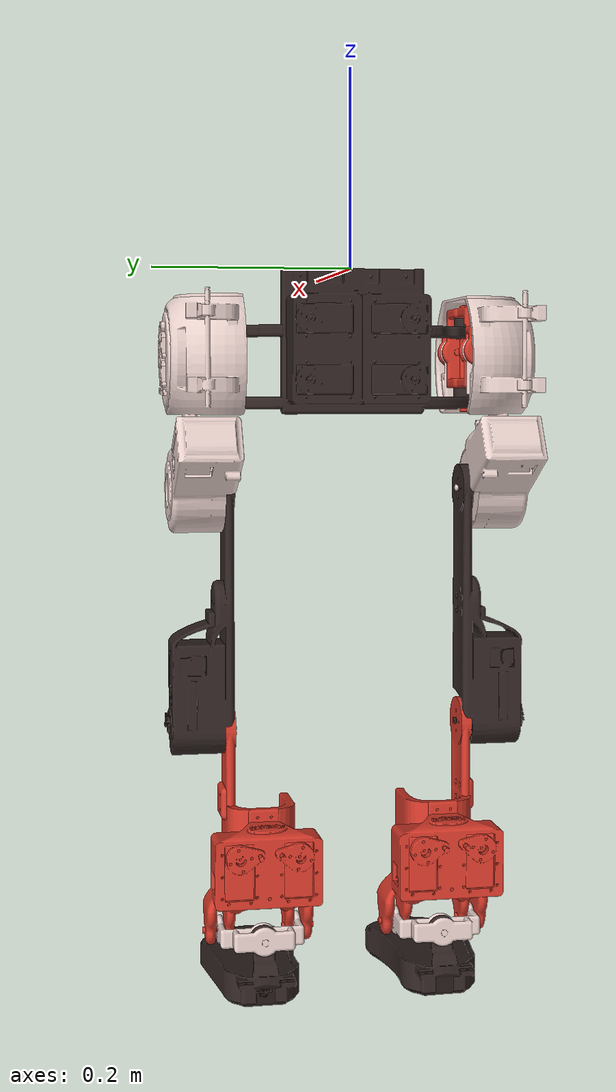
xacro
<?xml version="1.0"?>
<!-- Revolute-Revolute Manipulator -->
<robot name="thormang3" xmlns:xacro="http://www.ros.org/wiki/xacro">

  <!-- some parameters -->
  <xacro:property name="pi" value="3.141592654" />

  <!-- Import all Gazebo-customization elements, including Gazebo colors -->

  <!-- Import Rviz colors -->
  <xacro:include filename="$(find thormang3_description)/urdf/materials.xacro" />
  <xacro:include filename="$(find thormang3_description)/urdf/thormang3.transmissions.xacro" />
  <xacro:include filename="$(find thormang3_description)/urdf/thormang3.structure.leg.xacro" />
  <xacro:include filename="$(find thormang3_description)/urdf/thormang3.gazebo" />
  <!-- Used for fixing robot -->
  <!-- pelvis_link -->
<link
    name="pelvis_link">
    <inertial>
      <origin
        xyz="-0.0229570391634383 9.79841631490452E-06 -0.0791579286364339"
        rpy="0 0 0" />
      <mass
        value="0.876180506785054" />
      <inertia
        ixx="1.0"
        ixy="0.0"
        ixz="0.0"
        iyy="1.0"
        iyz="0.0"
        izz="1.0" />
    </inertial>
    <visual>
      <origin
        xyz="0 0 0"
        rpy="0 0 0" />
      <geometry>
        <mesh
          filename="package://thormang3_description/meshes/pelvis_link.STL" />
      </geometry>
      <material
        name="">
        <color
          rgba="0.1882 0.1411 0.133333 1" />
      </material>
    </visual>
    <collision>
      <origin
        xyz="0 0 0"
        rpy="0 0 0" />
      <geometry>
        <mesh
          filename="package://thormang3_description/meshes/pelvis_link.STL" />
      </geometry>
    </collision>
  </link>

  <!-- imu joint -->

  <xacro:thormang3_l_leg parent="pelvis_link" />
  <xacro:thormang3_r_leg parent="pelvis_link" />
</robot>

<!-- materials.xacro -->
<robot>

  <material name="black">
    <color rgba="0.0 0.0 0.0 1.0"/>
  </material>

  <material name="blue">
    <color rgba="0.0 0.0 0.8 1.0"/>
  </material>

  <material name="green">
    <color rgba="0.0 0.8 0.0 1.0"/>
  </material>

  <material name="grey">
    <color rgba="0.2 0.2 0.2 1.0"/>
  </material>

  <material name="orange">
    <color rgba="${255/255} ${108/255} ${10/255} 1.0"/>
  </material>

  <material name="brown">
    <color rgba="${222/255} ${207/255} ${195/255} 1.0"/>
  </material>

  <material name="red">
    <color rgba="0.8 0.1 0.1 1.0"/>
  </material>

  <material name="white">
    <color rgba="1.0 1.0 1.0 1.0"/>
  </material>

</robot>

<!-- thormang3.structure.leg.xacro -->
<!--black 0.1882 0.1411 0.133333 -->
<!--red 0.8196 0.22 0.1608 -->
<!-- white 0.89 0.8 0.78 -->
<robot xmlns:xacro="http://ros.org/wiki/xacro">

    <xacro:property name="pi" value="3.141592654" />

    <xacro:macro name="thormang3_l_leg" params="parent">

	<!-- left hip yaw joint -->
  <link
    name="l_leg_hip_y_link">
    <inertial>
      <origin
        xyz="0.000194866698194046 3.98997327107631E-05 0.00285846754175562"
        rpy="0 0 0" />
      <mass
        value="0.0865282088524624" />
      <inertia
        ixx="1.0"
        ixy="0.0"
        ixz="0.0"
        iyy="1.0"
        iyz="0.0"
        izz="1.0" />
    </inertial>
    <visual>
      <origin
        xyz="0 0 0"
        rpy="0 0 0" />
      <geometry>
        <mesh
          filename="package://thormang3_description/meshes/l_leg_hip_y_link.STL" />
      </geometry>
      <material
        name="">
        <color
          rgba="0.8196 0.22 0.1608 1" />
      </material>
    </visual>
    <collision>
      <origin
        xyz="0 0 0"
        rpy="0 0 0" />
      <geometry>
        <mesh
          filename="package://thormang3_description/meshes/l_leg_hip_y_link.STL" />
      </geometry>
    </collision>
  </link>
  <joint
    name="l_leg_hip_y"
    type="revolute">
    <origin
      xyz="0.023 0.125 -0.0813"
      rpy="0 0 0" />
    <parent
      link="pelvis_link" />
    <child
      link="l_leg_hip_y_link" />
    <axis
      xyz="0 0 1" />
    <limit
      velocity="6.5"
      effort="1000"
      lower="-2.826"
      upper="2.826" />
    <dynamics
      damping="0.1"
      friction="0.0" />
  </joint>
<xacro:insert_transmission name="l_leg_hip_y" />
  <link
    name="l_leg_hip_r_link">
    <inertial>
      <origin
        xyz="-0.0228672177413694 0.0267340296554695 -0.057861572875431"
        rpy="0 0 0" />
      <mass
        value="0.577322605082582" />
      <inertia
        ixx="1.0"
        ixy="0.0"
        ixz="0.0"
        iyy="1.0"
        iyz="0.0"
        izz="1.0" />
    </inertial>
    <visual>
      <origin
        xyz="0 0 0"
        rpy="0 0 0" />
      <geometry>
        <mesh
          filename="package://thormang3_description/meshes/l_leg_hip_r_link.STL" />
      </geometry>
      <material
        name="">
        <color
          rgba="0.89 0.8 0.78 1" />
      </material>
    </visual>
    <collision>
      <origin
        xyz="0 0 0"
        rpy="0 0 0" />
      <geometry>
        <mesh
          filename="package://thormang3_description/meshes/l_leg_hip_r_link.STL" />
      </geometry>
    </collision>
  </link>
  <joint
    name="l_leg_hip_r"
    type="revolute">
    <origin
      xyz="0 0 0"
      rpy="0 0 0" />
    <parent
      link="l_leg_hip_y_link" />
    <child
      link="l_leg_hip_r_link" />
    <axis
      xyz="1 0 0" />
    <limit
      velocity="6.5"
      effort="1000"
      lower="-2.826"
      upper="2.826" />
    <dynamics
      damping="0.1"
      friction="0.0" />
  </joint>
<xacro:insert_transmission name="l_leg_hip_r" />
  <link
    name="l_leg_hip_p_link">
    <inertial>
      <origin
        xyz="-0.000116198463840173 0.0284688740026196 -0.159183589997654"
        rpy="0 0 0" />
      <mass
        value="0.286678540994592" />
      <inertia
        ixx="1.0"
        ixy="0.0"
        ixz="0.0"
        iyy="1.0"
        iyz="0.0"
        izz="1.0" />
    </inertial>
    <visual>
      <origin
        xyz="0 0 0"
        rpy="0 0 0" />
      <geometry>
        <mesh
          filename="package://thormang3_description/meshes/l_leg_hip_p_link.STL" />
      </geometry>
      <material
        name="">
        <color
          rgba="0.1882 0.1411 0.133333 1" />
      </material>
    </visual>
    <collision>
      <origin
        xyz="0 0 0"
        rpy="0 0 0" />
      <geometry>
        <mesh
          filename="package://thormang3_description/meshes/l_leg_hip_p_link.STL" />
      </geometry>
    </collision>
  </link>
  <joint
    name="l_leg_hip_p"
    type="revolute">
    <origin
      xyz="0.000765 -0.0097362 -0.14104"
      rpy="0 0 0" />
    <parent
      link="l_leg_hip_r_link" />
    <child
      link="l_leg_hip_p_link" />
    <axis
      xyz="0 1 0" />
    <limit
      velocity="6.5"
      effort="1000"
      lower="-2.826"
      upper="2.826" />
    <dynamics
      damping="0.1"
      friction="0.0" />
  </joint>
<xacro:insert_transmission name="l_leg_hip_p" />
  <link
    name="l_leg_kn_p_link">
    <inertial>
      <origin
        xyz="-0.0348628624504665 -0.0190683597425377 -0.127805036988548"
        rpy="0 0 0" />
      <mass
        value="0.501847265279983" />
      <inertia
        ixx="1.0"
        ixy="0.0"
        ixz="0.0"
        iyy="1.0"
        iyz="0.0"
        izz="1.0" />
    </inertial>
    <visual>
      <origin
        xyz="0 0 0"
        rpy="0 0 0" />
      <geometry>
        <mesh
          filename="package://thormang3_description/meshes/l_leg_kn_p_link.STL" />
      </geometry>
      <material
        name="">
        <color
          rgba="0.8196 0.22 0.1608 1" />
      </material>
    </visual>
    <collision>
      <origin
        xyz="0 0 0"
        rpy="0 0 0" />
      <geometry>
        <mesh
          filename="package://thormang3_description/meshes/l_leg_kn_p_link.STL" />
      </geometry>
    </collision>
  </link>
  <joint
    name="l_leg_kn_p"
    type="revolute">
    <origin
      xyz="0 -0.00025 -0.2451"
      rpy="0 0 0" />
    <parent
      link="l_leg_hip_p_link" />
    <child
      link="l_leg_kn_p_link" />
    <axis
      xyz="0 1 0" />
    <limit
      velocity="6.5"
      effort="1000"
      lower="-2.826"
      upper="2.826" />
    <dynamics
      damping="0.1"
      friction="0.0" />
  </joint>
<xacro:insert_transmission name="l_leg_kn_p" />
  <link
    name="l_leg_an_p_link">
    <inertial>
      <origin
        xyz="-0.0299520881007188 2.09226775349514E-08 3.0086740876456E-09"
        rpy="0 0 0" />
      <mass
        value="0.0325752774497041" />
      <inertia
        ixx="1.0"
        ixy="0.0"
        ixz="0.0"
        iyy="1.0"
        iyz="0.0"
        izz="1.0" />
    </inertial>
    <visual>
      <origin
        xyz="0 0 0"
        rpy="0 0 0" />
      <geometry>
        <mesh
          filename="package://thormang3_description/meshes/l_leg_an_p_link.STL" />
      </geometry>
      <material
        name="">
        <color
          rgba="0.89 0.8 0.78 1" />
      </material>
    </visual>
    <collision>
      <origin
        xyz="0 0 0"
        rpy="0 0 0" />
      <geometry>
        <mesh
          filename="package://thormang3_description/meshes/l_leg_an_p_link.STL" />
      </geometry>
    </collision>
  </link>
  <joint
    name="l_leg_an_p"
    type="revolute">
    <origin
      xyz="0 -0.022 -0.21"
      rpy="0 0 0" />
    <parent
      link="l_leg_kn_p_link" />
    <child
      link="l_leg_an_p_link" />
    <axis
      xyz="0 1 0" />
    <limit
      velocity="6.5"
      effort="1000"
      lower="-2.826"
      upper="2.826" />
    <dynamics
      damping="0.1"
      friction="0.0" />
  </joint>
<xacro:insert_transmission name="l_leg_an_p" />
  <link
    name="l_leg_an_r_link">
    <inertial>
      <origin
        xyz="0.0362143728561817 0.00041776190047349 -0.0460605874777161"
        rpy="0 0 0" />
      <mass
        value="1.20447635642258" />
      <inertia
        ixx="1.0"
        ixy="0.0"
        ixz="0.0"
        iyy="1.0"
        iyz="0.0"
        izz="1.0" />
    </inertial>
    <visual>
      <origin
        xyz="0 0 0"
        rpy="0 0 0" />
      <geometry>
        <mesh
          filename="package://thormang3_description/meshes/l_leg_an_r_link.STL" />
      </geometry>
      <material
        name="">
        <color
          rgba="0.1882 0.1411 0.133333 1" />
      </material>
    </visual>
    <collision>
      <origin
        xyz="0.1 0.3 0"
        rpy="0 0 0" />
      <geometry>
         <box size="0.4 0.3 0.13"/>
      </geometry>
    </collision>
  </link>
  <joint
    name="l_leg_an_r"
    type="revolute">
    <origin
      xyz="0 0 0"
      rpy="0 0 0" />
    <parent
      link="l_leg_an_p_link" />
    <child
      link="l_leg_an_r_link" />
    <axis
      xyz="1 0 0" />
    <limit
      velocity="6.5"
      effort="1000"
      lower="-2.826"
      upper="2.826" />
    <dynamics
      damping="0.1"
      friction="0.0" />
  </joint>
<xacro:insert_transmission name="l_leg_an_r" />

	<!-- left ft joint -->

	<!-- left foot link -->

	<!-- left ft fixed joint -->
	<!-- left foot ft link -->
    </xacro:macro>

    <xacro:macro name="thormang3_r_leg" params="parent">

	<!-- right hip yaw joint -->
       <link
    name="r_leg_hip_y_link">
    <inertial>
      <origin
        xyz="0.000194859448184315 -3.99012608066768E-05 0.00285850027010753"
        rpy="0 0 0" />
      <mass
        value="0.0865285731833129" />
      <inertia
        ixx="1.0"
        ixy="0.0"
        ixz="0.0"
        iyy="1.0"
        iyz="0.0"
        izz="1.0" />
    </inertial>
    <visual>
      <origin
        xyz="0 0.25 0"
        rpy="0 0 0" />
      <geometry>
        <mesh
          filename="package://thormang3_description/meshes/r_leg_hip_y_link.STL" />
      </geometry>
      <material
        name="">
        <color
          rgba="0.8196 0.22 0.1608 1" />
      </material>
    </visual>
    <collision>
      <origin
        xyz="0 0.25 0"
        rpy="0 0 0" />
      <geometry>
        <mesh
          filename="package://thormang3_description/meshes/r_leg_hip_y_link.STL" />
      </geometry>
    </collision>
  </link>
  <joint
    name="r_leg_hip_y"
    type="revolute">
    <origin
      xyz="0.023 -0.125 -0.0813"
      rpy="0 0 0" />
    <parent
      link="pelvis_link" />
    <child
      link="r_leg_hip_y_link" />
    <axis
      xyz="0 0 1" />
    <limit
      velocity="6.5"
      effort="1000"
      lower="-2.826"
      upper="2.826" />
    <dynamics
      damping="0.1"
      friction="0.0" />
  </joint>
<xacro:insert_transmission name="r_leg_hip_y" />
  <link
    name="r_leg_hip_r_link">
    <inertial>
      <origin
        xyz="-0.023877009103276 -0.0267341360094503 -0.0578620358278071"
        rpy="0 0 0" />
      <mass
        value="0.577327897793504" />
      <inertia
        ixx="1.0"
        ixy="0.0"
        ixz="0.0"
        iyy="1.0"
        iyz="0.0"
        izz="1.0" />
    </inertial>
    <visual>
      <origin
        xyz="0 0 0"
        rpy="0 0 0" />
      <geometry>
        <mesh
          filename="package://thormang3_description/meshes/r_leg_hip_r_link.STL" />
      </geometry>
      <material
        name="">
        <color
          rgba="0.89 0.8 0.78 1" />
      </material>
    </visual>
    <collision>
      <origin
        xyz="0 0 0"
        rpy="0 0 0" />
      <geometry>
        <mesh
          filename="package://thormang3_description/meshes/r_leg_hip_r_link.STL" />
      </geometry>
    </collision>
  </link>
  <joint
    name="r_leg_hip_r"
    type="revolute">
    <origin
      xyz="0 0 0"
      rpy="0 0 0" />
    <parent
      link="r_leg_hip_y_link" />
    <child
      link="r_leg_hip_r_link" />
    <axis
      xyz="1 0 0" />
    <limit
      velocity="6.5"
      effort="1000"
      lower="-2.826"
      upper="2.826" />
    <dynamics
      damping="0.1"
      friction="0.0" />
  </joint>
<xacro:insert_transmission name="r_leg_hip_r" />
  <link
    name="r_leg_hip_p_link">
    <inertial>
      <origin
        xyz="-0.000119608407726818 -0.0284075969398045 -0.159183646260211"
        rpy="0 0 0" />
      <mass
        value="0.286679006041324" />
      <inertia
        ixx="1.0"
        ixy="0.0"
        ixz="0.0"
        iyy="1.0"
        iyz="0.0"
        izz="1.0" />
    </inertial>
    <visual>
      <origin
        xyz="0 0 0"
        rpy="0 0 0" />
      <geometry>
        <mesh
          filename="package://thormang3_description/meshes/r_leg_hip_p_link.STL" />
      </geometry>
      <material
        name="">
        <color
          rgba="0.1882 0.1411 0.133333 1" />
      </material>
    </visual>
    <collision>
      <origin
        xyz="0 0 0"
        rpy="0 0 0" />
      <geometry>
        <mesh
          filename="package://thormang3_description/meshes/r_leg_hip_p_link.STL" />
      </geometry>
    </collision>
  </link>
  <joint
    name="r_leg_hip_p"
    type="revolute">
    <origin
      xyz="-0.000235 0.0097362 -0.14104"
      rpy="0 0 0" />
    <parent
      link="r_leg_hip_r_link" />
    <child
      link="r_leg_hip_p_link" />
    <axis
      xyz="0 1 0" />
    <limit
      velocity="6.5"
      effort="1000"
      lower="-2.826"
      upper="2.826" />
    <dynamics
      damping="0.1"
      friction="0.0" />
  </joint>
<xacro:insert_transmission name="r_leg_hip_p" />
  <link
    name="r_leg_kn_p_link">
    <inertial>
      <origin
        xyz="-0.0348599742971025 0.0190722316896734 -0.127803416335954"
        rpy="0 0 0" />
      <mass
        value="0.501848142816981" />
      <inertia
        ixx="1.0"
        ixy="0.0"
        ixz="0.0"
        iyy="1.0"
        iyz="0.0"
        izz="1.0" />
    </inertial>
    <visual>
      <origin
        xyz="0 0 0"
        rpy="0 0 0" />
      <geometry>
        <mesh
          filename="package://thormang3_description/meshes/r_leg_kn_p_link.STL" />
      </geometry>
      <material
        name="">
        <color
          rgba="0.8196 0.22 0.1608 1" />
      </material>
    </visual>
    <collision>
      <origin
        xyz="0 0 0"
        rpy="0 0 0" />
      <geometry>
        <mesh
          filename="package://thormang3_description/meshes/r_leg_kn_p_link.STL" />
      </geometry>
    </collision>
  </link>
  <joint
    name="r_leg_kn_p"
    type="revolute">
    <origin
      xyz="0 0.00075 -0.2451"
      rpy="0 0 0" />
    <parent
      link="r_leg_hip_p_link" />
    <child
      link="r_leg_kn_p_link" />
    <axis
      xyz="0 1 0" />
    <limit
      velocity="6.5"
      effort="1000"
      lower="-2.826"
      upper="2.826" />
    <dynamics
      damping="0.1"
      friction="0.0" />
  </joint>
<xacro:insert_transmission name="r_leg_kn_p" />
  <link
    name="r_leg_an_p_link">
    <inertial>
      <origin
        xyz="-0.0299520881006903 2.09226773250498E-08 3.00867425417906E-09"
        rpy="0 0 0" />
      <mass
        value="0.0325752774497039" />
      <inertia
        ixx="1.0"
        ixy="0.0"
        ixz="0.0"
        iyy="1.0"
        iyz="0.0"
        izz="1.0" />
    </inertial>
    <visual>
      <origin
        xyz="0 0 0"
        rpy="0 0 0" />
      <geometry>
        <mesh
          filename="package://thormang3_description/meshes/r_leg_an_p_link.STL" />
      </geometry>
      <material
        name="">
        <color
          rgba="0.89 0.8 0.78 1" />
      </material>
    </visual>
    <collision>
      <origin
        xyz="0 0 0"
        rpy="0 0 0" />
      <geometry>
        <mesh
          filename="package://thormang3_description/meshes/r_leg_an_p_link.STL" />
      </geometry>
    </collision>
  </link>
  <joint
    name="r_leg_an_p"
    type="revolute">
    <origin
      xyz="0 0.022 -0.21"
      rpy="0 0 0" />
    <parent
      link="r_leg_kn_p_link" />
    <child
      link="r_leg_an_p_link" />
    <axis
      xyz="0 1 0" />
    <limit
      velocity="6.5"
      effort="1000"
      lower="-2.826"
      upper="2.826" />
    <dynamics
      damping="0.1"
      friction="0.0" />
  </joint>
<xacro:insert_transmission name="r_leg_an_p" />
  <link
    name="r_leg_an_r_link">
    <inertial>
      <origin
        xyz="0.0365974815210963 -0.00127278229934455 -0.0459051713323503"
        rpy="0 0 0" />
      <mass
        value="1.20447635642258" />
      <inertia
        ixx="1.0"
        ixy="0.0"
        ixz="0.0"
        iyy="1.0"
        iyz="0.0"
        izz="1.0" />
    </inertial>
    <visual>
      <origin
        xyz="0 0 0"
        rpy="0 0 0" />
      <geometry>
        <mesh
          filename="package://thormang3_description/meshes/r_leg_an_r_link.STL" />
      </geometry>
      <material
        name="">
        <color
          rgba="0.1882 0.1411 0.133333 1" />
      </material>
    </visual>
    <collision>
      <origin
        xyz="0.1 -0.3 0"
        rpy="0 0 0" />
      <geometry>
         <box size="0.4 -0.3 0.13"/>
      </geometry>
    </collision>
  </link>
  <joint
    name="r_leg_an_r"
    type="revolute">
    <origin
      xyz="0 0 0"
      rpy="0 0 0" />
    <parent
      link="r_leg_an_p_link" />
    <child
      link="r_leg_an_r_link" />
    <axis
      xyz="1 0 0" />
    <limit
      velocity="6.5"
      effort="1000"
      lower="-2.826"
      upper="2.826" />
    <dynamics
      damping="0.1"
      friction="0.0" />
  </joint>
<xacro:insert_transmission name="r_leg_an_r" />

	<!-- right ft joint -->

	<!-- right foot link -->

	<!-- right ft fixed joint -->
	<!-- right foot ft link -->
    </xacro:macro>

</robot>
